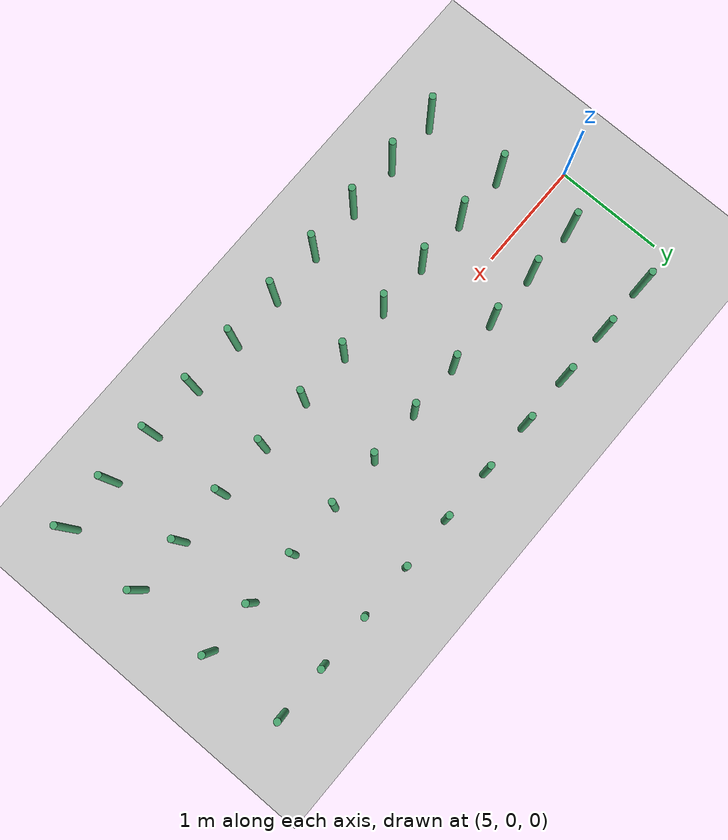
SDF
<sdf version="1.6">
 <world name="default">
  <model name="ground_plane">
   <static>1</static>
   <link name="link">
    <collision name="collision">
     <geometry><plane><normal>0 0 1</normal><size>100 100</size></plane></geometry>
     <surface>
      <contact><collide_bitmask>65535</collide_bitmask></contact>
      <friction><ode><mu>100</mu><mu2>50</mu2></ode></friction>
     </surface>
    </collision>
    <visual name="visual">
     <cast_shadows>0</cast_shadows>
     <geometry><plane><normal>0 0 1</normal><size>100 100</size></plane></geometry>
     <material>
      <script><uri>file://media/materials/scripts/gazebo.material</uri><name>Gazebo/Grey</name></script>
     </material>
    </visual>
   </link>
  </model>
  <model name="cylinder_0040">
   <pose>5.5 0.375 0.5 0 -0 0</pose>
   <link name="cylinder_0040_link">
    <inertial>
     <mass>5.0</mass>
     <inertia>
      <ixx>0.23550000000000001</ixx>
      <ixy>0</ixy>
      <ixz>0</ixz>
      <iyy>0.23550000000000001</iyy>
      <iyz>0</iyz>
      <izz>0.00225</izz>
     </inertia>
    </inertial>
    <collision name="collision">
     <geometry><cylinder><radius>0.03</radius><length>0.75</length></cylinder></geometry>
    </collision>
    <visual name="visual">
     <geometry><cylinder><radius>0.03</radius><length>0.75</length></cylinder></geometry>
     <material>
      <ambient>0.437790 0.985028 0.656685 1.0</ambient>
      <diffuse>0.297093 0.668460 0.445640 1.0</diffuse>
      <specular>0.000000 0.000000 0.000000 1.0</specular>
      <emissive>0.0 0.0 0.0 0.0</emissive>
     </material>
    </visual>
   </link>
  </model>
  <model name="cylinder_0041">
   <pose>5.5 1.125 0.5 0 -0 0</pose>
   <link name="cylinder_0041_link">
    <inertial>
     <mass>5.0</mass>
     <inertia>
      <ixx>0.23550000000000001</ixx>
      <ixy>0</ixy>
      <ixz>0</ixz>
      <iyy>0.23550000000000001</iyy>
      <iyz>0</iyz>
      <izz>0.00225</izz>
     </inertia>
    </inertial>
    <collision name="collision">
     <geometry><cylinder><radius>0.03</radius><length>0.75</length></cylinder></geometry>
    </collision>
    <visual name="visual">
     <geometry><cylinder><radius>0.03</radius><length>0.75</length></cylinder></geometry>
     <material>
      <ambient>0.437790 0.985028 0.656685 1.0</ambient>
      <diffuse>0.297093 0.668460 0.445640 1.0</diffuse>
      <specular>0.000000 0.000000 0.000000 1.0</specular>
      <emissive>0.0 0.0 0.0 0.0</emissive>
     </material>
    </visual>
   </link>
  </model>
  <model name="cylinder_0042">
   <pose>5.5 -0.375 0.5 0 -0 0</pose>
   <link name="cylinder_0042_link">
    <inertial>
     <mass>5.0</mass>
     <inertia>
      <ixx>0.23550000000000001</ixx>
      <ixy>0</ixy>
      <ixz>0</ixz>
      <iyy>0.23550000000000001</iyy>
      <iyz>0</iyz>
      <izz>0.00225</izz>
     </inertia>
    </inertial>
    <collision name="collision">
     <geometry><cylinder><radius>0.03</radius><length>0.75</length></cylinder></geometry>
    </collision>
    <visual name="visual">
     <geometry><cylinder><radius>0.03</radius><length>0.75</length></cylinder></geometry>
     <material>
      <ambient>0.437790 0.985028 0.656685 1.0</ambient>
      <diffuse>0.297093 0.668460 0.445640 1.0</diffuse>
      <specular>0.000000 0.000000 0.000000 1.0</specular>
      <emissive>0.0 0.0 0.0 0.0</emissive>
     </material>
    </visual>
   </link>
  </model>
  <model name="cylinder_0043">
   <pose>5.5 -1.125 0.5 0 -0 0</pose>
   <link name="cylinder_0043_link">
    <inertial>
     <mass>5.0</mass>
     <inertia>
      <ixx>0.23550000000000001</ixx>
      <ixy>0</ixy>
      <ixz>0</ixz>
      <iyy>0.23550000000000001</iyy>
      <iyz>0</iyz>
      <izz>0.00225</izz>
     </inertia>
    </inertial>
    <collision name="collision">
     <geometry><cylinder><radius>0.03</radius><length>0.75</length></cylinder></geometry>
    </collision>
    <visual name="visual">
     <geometry><cylinder><radius>0.03</radius><length>0.75</length></cylinder></geometry>
     <material>
      <ambient>0.437790 0.985028 0.656685 1.0</ambient>
      <diffuse>0.297093 0.668460 0.445640 1.0</diffuse>
      <specular>0.000000 0.000000 0.000000 1.0</specular>
      <emissive>0.0 0.0 0.0 0.0</emissive>
     </material>
    </visual>
   </link>
  </model>
  <model name="cylinder_0044">
   <pose>6.0 0.375 0.5 0 -0 0</pose>
   <link name="cylinder_0044_link">
    <inertial>
     <mass>5.0</mass>
     <inertia>
      <ixx>0.23550000000000001</ixx>
      <ixy>0</ixy>
      <ixz>0</ixz>
      <iyy>0.23550000000000001</iyy>
      <iyz>0</iyz>
      <izz>0.00225</izz>
     </inertia>
    </inertial>
    <collision name="collision">
     <geometry><cylinder><radius>0.03</radius><length>0.75</length></cylinder></geometry>
    </collision>
    <visual name="visual">
     <geometry><cylinder><radius>0.03</radius><length>0.75</length></cylinder></geometry>
     <material>
      <ambient>0.437790 0.985028 0.656685 1.0</ambient>
      <diffuse>0.297093 0.668460 0.445640 1.0</diffuse>
      <specular>0.000000 0.000000 0.000000 1.0</specular>
      <emissive>0.0 0.0 0.0 0.0</emissive>
     </material>
    </visual>
   </link>
  </model>
  <model name="cylinder_0045">
   <pose>6.0 1.125 0.5 0 -0 0</pose>
   <link name="cylinder_0045_link">
    <inertial>
     <mass>5.0</mass>
     <inertia>
      <ixx>0.23550000000000001</ixx>
      <ixy>0</ixy>
      <ixz>0</ixz>
      <iyy>0.23550000000000001</iyy>
      <iyz>0</iyz>
      <izz>0.00225</izz>
     </inertia>
    </inertial>
    <collision name="collision">
     <geometry><cylinder><radius>0.03</radius><length>0.75</length></cylinder></geometry>
    </collision>
    <visual name="visual">
     <geometry><cylinder><radius>0.03</radius><length>0.75</length></cylinder></geometry>
     <material>
      <ambient>0.437790 0.985028 0.656685 1.0</ambient>
      <diffuse>0.297093 0.668460 0.445640 1.0</diffuse>
      <specular>0.000000 0.000000 0.000000 1.0</specular>
      <emissive>0.0 0.0 0.0 0.0</emissive>
     </material>
    </visual>
   </link>
  </model>
  <model name="cylinder_0046">
   <pose>6.0 -0.375 0.5 0 -0 0</pose>
   <link name="cylinder_0046_link">
    <inertial>
     <mass>5.0</mass>
     <inertia>
      <ixx>0.23550000000000001</ixx>
      <ixy>0</ixy>
      <ixz>0</ixz>
      <iyy>0.23550000000000001</iyy>
      <iyz>0</iyz>
      <izz>0.00225</izz>
     </inertia>
    </inertial>
    <collision name="collision">
     <geometry><cylinder><radius>0.03</radius><length>0.75</length></cylinder></geometry>
    </collision>
    <visual name="visual">
     <geometry><cylinder><radius>0.03</radius><length>0.75</length></cylinder></geometry>
     <material>
      <ambient>0.437790 0.985028 0.656685 1.0</ambient>
      <diffuse>0.297093 0.668460 0.445640 1.0</diffuse>
      <specular>0.000000 0.000000 0.000000 1.0</specular>
      <emissive>0.0 0.0 0.0 0.0</emissive>
     </material>
    </visual>
   </link>
  </model>
  <model name="cylinder_0047">
   <pose>6.0 -1.125 0.5 0 -0 0</pose>
   <link name="cylinder_0047_link">
    <inertial>
     <mass>5.0</mass>
     <inertia>
      <ixx>0.23550000000000001</ixx>
      <ixy>0</ixy>
      <ixz>0</ixz>
      <iyy>0.23550000000000001</iyy>
      <iyz>0</iyz>
      <izz>0.00225</izz>
     </inertia>
    </inertial>
    <collision name="collision">
     <geometry><cylinder><radius>0.03</radius><length>0.75</length></cylinder></geometry>
    </collision>
    <visual name="visual">
     <geometry><cylinder><radius>0.03</radius><length>0.75</length></cylinder></geometry>
     <material>
      <ambient>0.437790 0.985028 0.656685 1.0</ambient>
      <diffuse>0.297093 0.668460 0.445640 1.0</diffuse>
      <specular>0.000000 0.000000 0.000000 1.0</specular>
      <emissive>0.0 0.0 0.0 0.0</emissive>
     </material>
    </visual>
   </link>
  </model>
  <model name="cylinder_0048">
   <pose>6.5 0.375 0.5 0 -0 0</pose>
   <link name="cylinder_0048_link">
    <inertial>
     <mass>5.0</mass>
     <inertia>
      <ixx>0.23550000000000001</ixx>
      <ixy>0</ixy>
      <ixz>0</ixz>
      <iyy>0.23550000000000001</iyy>
      <iyz>0</iyz>
      <izz>0.00225</izz>
     </inertia>
    </inertial>
    <collision name="collision">
     <geometry><cylinder><radius>0.03</radius><length>0.75</length></cylinder></geometry>
    </collision>
    <visual name="visual">
     <geometry><cylinder><radius>0.03</radius><length>0.75</length></cylinder></geometry>
     <material>
      <ambient>0.437790 0.985028 0.656685 1.0</ambient>
      <diffuse>0.297093 0.668460 0.445640 1.0</diffuse>
      <specular>0.000000 0.000000 0.000000 1.0</specular>
      <emissive>0.0 0.0 0.0 0.0</emissive>
     </material>
    </visual>
   </link>
  </model>
  <model name="cylinder_0049">
   <pose>6.5 1.125 0.5 0 -0 0</pose>
   <link name="cylinder_0049_link">
    <inertial>
     <mass>5.0</mass>
     <inertia>
      <ixx>0.23550000000000001</ixx>
      <ixy>0</ixy>
      <ixz>0</ixz>
      <iyy>0.23550000000000001</iyy>
      <iyz>0</iyz>
      <izz>0.00225</izz>
     </inertia>
    </inertial>
    <collision name="collision">
     <geometry><cylinder><radius>0.03</radius><length>0.75</length></cylinder></geometry>
    </collision>
    <visual name="visual">
     <geometry><cylinder><radius>0.03</radius><length>0.75</length></cylinder></geometry>
     <material>
      <ambient>0.437790 0.985028 0.656685 1.0</ambient>
      <diffuse>0.297093 0.668460 0.445640 1.0</diffuse>
      <specular>0.000000 0.000000 0.000000 1.0</specular>
      <emissive>0.0 0.0 0.0 0.0</emissive>
     </material>
    </visual>
   </link>
  </model>
  <model name="cylinder_0050">
   <pose>6.5 -0.375 0.5 0 -0 0</pose>
   <link name="cylinder_0050_link">
    <inertial>
     <mass>5.0</mass>
     <inertia>
      <ixx>0.23550000000000001</ixx>
      <ixy>0</ixy>
      <ixz>0</ixz>
      <iyy>0.23550000000000001</iyy>
      <iyz>0</iyz>
      <izz>0.00225</izz>
     </inertia>
    </inertial>
    <collision name="collision">
     <geometry><cylinder><radius>0.03</radius><length>0.75</length></cylinder></geometry>
    </collision>
    <visual name="visual">
     <geometry><cylinder><radius>0.03</radius><length>0.75</length></cylinder></geometry>
     <material>
      <ambient>0.437790 0.985028 0.656685 1.0</ambient>
      <diffuse>0.297093 0.668460 0.445640 1.0</diffuse>
      <specular>0.000000 0.000000 0.000000 1.0</specular>
      <emissive>0.0 0.0 0.0 0.0</emissive>
     </material>
    </visual>
   </link>
  </model>
  <model name="cylinder_0051">
   <pose>6.5 -1.125 0.5 0 -0 0</pose>
   <link name="cylinder_0051_link">
    <inertial>
     <mass>5.0</mass>
     <inertia>
      <ixx>0.23550000000000001</ixx>
      <ixy>0</ixy>
      <ixz>0</ixz>
      <iyy>0.23550000000000001</iyy>
      <iyz>0</iyz>
      <izz>0.00225</izz>
     </inertia>
    </inertial>
    <collision name="collision">
     <geometry><cylinder><radius>0.03</radius><length>0.75</length></cylinder></geometry>
    </collision>
    <visual name="visual">
     <geometry><cylinder><radius>0.03</radius><length>0.75</length></cylinder></geometry>
     <material>
      <ambient>0.437790 0.985028 0.656685 1.0</ambient>
      <diffuse>0.297093 0.668460 0.445640 1.0</diffuse>
      <specular>0.000000 0.000000 0.000000 1.0</specular>
      <emissive>0.0 0.0 0.0 0.0</emissive>
     </material>
    </visual>
   </link>
  </model>
  <model name="cylinder_0052">
   <pose>7.0 0.375 0.5 0 -0 0</pose>
   <link name="cylinder_0052_link">
    <inertial>
     <mass>5.0</mass>
     <inertia>
      <ixx>0.23550000000000001</ixx>
      <ixy>0</ixy>
      <ixz>0</ixz>
      <iyy>0.23550000000000001</iyy>
      <iyz>0</iyz>
      <izz>0.00225</izz>
     </inertia>
    </inertial>
    <collision name="collision">
     <geometry><cylinder><radius>0.03</radius><length>0.75</length></cylinder></geometry>
    </collision>
    <visual name="visual">
     <geometry><cylinder><radius>0.03</radius><length>0.75</length></cylinder></geometry>
     <material>
      <ambient>0.437790 0.985028 0.656685 1.0</ambient>
      <diffuse>0.297093 0.668460 0.445640 1.0</diffuse>
      <specular>0.000000 0.000000 0.000000 1.0</specular>
      <emissive>0.0 0.0 0.0 0.0</emissive>
     </material>
    </visual>
   </link>
  </model>
  <model name="cylinder_0053">
   <pose>7.0 1.125 0.5 0 -0 0</pose>
   <link name="cylinder_0053_link">
    <inertial>
     <mass>5.0</mass>
     <inertia>
      <ixx>0.23550000000000001</ixx>
      <ixy>0</ixy>
      <ixz>0</ixz>
      <iyy>0.23550000000000001</iyy>
      <iyz>0</iyz>
      <izz>0.00225</izz>
     </inertia>
    </inertial>
    <collision name="collision">
     <geometry><cylinder><radius>0.03</radius><length>0.75</length></cylinder></geometry>
    </collision>
    <visual name="visual">
     <geometry><cylinder><radius>0.03</radius><length>0.75</length></cylinder></geometry>
     <material>
      <ambient>0.437790 0.985028 0.656685 1.0</ambient>
      <diffuse>0.297093 0.668460 0.445640 1.0</diffuse>
      <specular>0.000000 0.000000 0.000000 1.0</specular>
      <emissive>0.0 0.0 0.0 0.0</emissive>
     </material>
    </visual>
   </link>
  </model>
  <model name="cylinder_0054">
   <pose>7.0 -0.375 0.5 0 -0 0</pose>
   <link name="cylinder_0054_link">
    <inertial>
     <mass>5.0</mass>
     <inertia>
      <ixx>0.23550000000000001</ixx>
      <ixy>0</ixy>
      <ixz>0</ixz>
      <iyy>0.23550000000000001</iyy>
      <iyz>0</iyz>
      <izz>0.00225</izz>
     </inertia>
    </inertial>
    <collision name="collision">
     <geometry><cylinder><radius>0.03</radius><length>0.75</length></cylinder></geometry>
    </collision>
    <visual name="visual">
     <geometry><cylinder><radius>0.03</radius><length>0.75</length></cylinder></geometry>
     <material>
      <ambient>0.437790 0.985028 0.656685 1.0</ambient>
      <diffuse>0.297093 0.668460 0.445640 1.0</diffuse>
      <specular>0.000000 0.000000 0.000000 1.0</specular>
      <emissive>0.0 0.0 0.0 0.0</emissive>
     </material>
    </visual>
   </link>
  </model>
  <model name="cylinder_0055">
   <pose>7.0 -1.125 0.5 0 -0 0</pose>
   <link name="cylinder_0055_link">
    <inertial>
     <mass>5.0</mass>
     <inertia>
      <ixx>0.23550000000000001</ixx>
      <ixy>0</ixy>
      <ixz>0</ixz>
      <iyy>0.23550000000000001</iyy>
      <iyz>0</iyz>
      <izz>0.00225</izz>
     </inertia>
    </inertial>
    <collision name="collision">
     <geometry><cylinder><radius>0.03</radius><length>0.75</length></cylinder></geometry>
    </collision>
    <visual name="visual">
     <geometry><cylinder><radius>0.03</radius><length>0.75</length></cylinder></geometry>
     <material>
      <ambient>0.437790 0.985028 0.656685 1.0</ambient>
      <diffuse>0.297093 0.668460 0.445640 1.0</diffuse>
      <specular>0.000000 0.000000 0.000000 1.0</specular>
      <emissive>0.0 0.0 0.0 0.0</emissive>
     </material>
    </visual>
   </link>
  </model>
  <model name="cylinder_0056">
   <pose>7.5 0.375 0.5 0 -0 0</pose>
   <link name="cylinder_0056_link">
    <inertial>
     <mass>5.0</mass>
     <inertia>
      <ixx>0.23550000000000001</ixx>
      <ixy>0</ixy>
      <ixz>0</ixz>
      <iyy>0.23550000000000001</iyy>
      <iyz>0</iyz>
      <izz>0.00225</izz>
     </inertia>
    </inertial>
    <collision name="collision">
     <geometry><cylinder><radius>0.03</radius><length>0.75</length></cylinder></geometry>
    </collision>
    <visual name="visual">
     <geometry><cylinder><radius>0.03</radius><length>0.75</length></cylinder></geometry>
     <material>
      <ambient>0.437790 0.985028 0.656685 1.0</ambient>
      <diffuse>0.297093 0.668460 0.445640 1.0</diffuse>
      <specular>0.000000 0.000000 0.000000 1.0</specular>
      <emissive>0.0 0.0 0.0 0.0</emissive>
     </material>
    </visual>
   </link>
  </model>
  <model name="cylinder_0057">
   <pose>7.5 1.125 0.5 0 -0 0</pose>
   <link name="cylinder_0057_link">
    <inertial>
     <mass>5.0</mass>
     <inertia>
      <ixx>0.23550000000000001</ixx>
      <ixy>0</ixy>
      <ixz>0</ixz>
      <iyy>0.23550000000000001</iyy>
      <iyz>0</iyz>
      <izz>0.00225</izz>
     </inertia>
    </inertial>
    <collision name="collision">
     <geometry><cylinder><radius>0.03</radius><length>0.75</length></cylinder></geometry>
    </collision>
    <visual name="visual">
     <geometry><cylinder><radius>0.03</radius><length>0.75</length></cylinder></geometry>
     <material>
      <ambient>0.437790 0.985028 0.656685 1.0</ambient>
      <diffuse>0.297093 0.668460 0.445640 1.0</diffuse>
      <specular>0.000000 0.000000 0.000000 1.0</specular>
      <emissive>0.0 0.0 0.0 0.0</emissive>
     </material>
    </visual>
   </link>
  </model>
  <model name="cylinder_0058">
   <pose>7.5 -0.375 0.5 0 -0 0</pose>
   <link name="cylinder_0058_link">
    <inertial>
     <mass>5.0</mass>
     <inertia>
      <ixx>0.23550000000000001</ixx>
      <ixy>0</ixy>
      <ixz>0</ixz>
      <iyy>0.23550000000000001</iyy>
      <iyz>0</iyz>
      <izz>0.00225</izz>
     </inertia>
    </inertial>
    <collision name="collision">
     <geometry><cylinder><radius>0.03</radius><length>0.75</length></cylinder></geometry>
    </collision>
    <visual name="visual">
     <geometry><cylinder><radius>0.03</radius><length>0.75</length></cylinder></geometry>
     <material>
      <ambient>0.437790 0.985028 0.656685 1.0</ambient>
      <diffuse>0.297093 0.668460 0.445640 1.0</diffuse>
      <specular>0.000000 0.000000 0.000000 1.0</specular>
      <emissive>0.0 0.0 0.0 0.0</emissive>
     </material>
    </visual>
   </link>
  </model>
  <model name="cylinder_0059">
   <pose>7.5 -1.125 0.5 0 -0 0</pose>
   <link name="cylinder_0059_link">
    <inertial>
     <mass>5.0</mass>
     <inertia>
      <ixx>0.23550000000000001</ixx>
      <ixy>0</ixy>
      <ixz>0</ixz>
      <iyy>0.23550000000000001</iyy>
      <iyz>0</iyz>
      <izz>0.00225</izz>
     </inertia>
    </inertial>
    <collision name="collision">
     <geometry><cylinder><radius>0.03</radius><length>0.75</length></cylinder></geometry>
    </collision>
    <visual name="visual">
     <geometry><cylinder><radius>0.03</radius><length>0.75</length></cylinder></geometry>
     <material>
      <ambient>0.437790 0.985028 0.656685 1.0</ambient>
      <diffuse>0.297093 0.668460 0.445640 1.0</diffuse>
      <specular>0.000000 0.000000 0.000000 1.0</specular>
      <emissive>0.0 0.0 0.0 0.0</emissive>
     </material>
    </visual>
   </link>
  </model>
  <model name="cylinder_0060">
   <pose>8.0 0.375 0.5 0 -0 0</pose>
   <link name="cylinder_0060_link">
    <inertial>
     <mass>5.0</mass>
     <inertia>
      <ixx>0.23550000000000001</ixx>
      <ixy>0</ixy>
      <ixz>0</ixz>
      <iyy>0.23550000000000001</iyy>
      <iyz>0</iyz>
      <izz>0.00225</izz>
     </inertia>
    </inertial>
    <collision name="collision">
     <geometry><cylinder><radius>0.03</radius><length>0.75</length></cylinder></geometry>
    </collision>
    <visual name="visual">
     <geometry><cylinder><radius>0.03</radius><length>0.75</length></cylinder></geometry>
     <material>
      <ambient>0.437790 0.985028 0.656685 1.0</ambient>
      <diffuse>0.297093 0.668460 0.445640 1.0</diffuse>
      <specular>0.000000 0.000000 0.000000 1.0</specular>
      <emissive>0.0 0.0 0.0 0.0</emissive>
     </material>
    </visual>
   </link>
  </model>
  <model name="cylinder_0061">
   <pose>8.0 1.125 0.5 0 -0 0</pose>
   <link name="cylinder_0061_link">
    <inertial>
     <mass>5.0</mass>
     <inertia>
      <ixx>0.23550000000000001</ixx>
      <ixy>0</ixy>
      <ixz>0</ixz>
      <iyy>0.23550000000000001</iyy>
      <iyz>0</iyz>
      <izz>0.00225</izz>
     </inertia>
    </inertial>
    <collision name="collision">
     <geometry><cylinder><radius>0.03</radius><length>0.75</length></cylinder></geometry>
    </collision>
    <visual name="visual">
     <geometry><cylinder><radius>0.03</radius><length>0.75</length></cylinder></geometry>
     <material>
      <ambient>0.437790 0.985028 0.656685 1.0</ambient>
      <diffuse>0.297093 0.668460 0.445640 1.0</diffuse>
      <specular>0.000000 0.000000 0.000000 1.0</specular>
      <emissive>0.0 0.0 0.0 0.0</emissive>
     </material>
    </visual>
   </link>
  </model>
  <model name="cylinder_0062">
   <pose>8.0 -0.375 0.5 0 -0 0</pose>
   <link name="cylinder_0062_link">
    <inertial>
     <mass>5.0</mass>
     <inertia>
      <ixx>0.23550000000000001</ixx>
      <ixy>0</ixy>
      <ixz>0</ixz>
      <iyy>0.23550000000000001</iyy>
      <iyz>0</iyz>
      <izz>0.00225</izz>
     </inertia>
    </inertial>
    <collision name="collision">
     <geometry><cylinder><radius>0.03</radius><length>0.75</length></cylinder></geometry>
    </collision>
    <visual name="visual">
     <geometry><cylinder><radius>0.03</radius><length>0.75</length></cylinder></geometry>
     <material>
      <ambient>0.437790 0.985028 0.656685 1.0</ambient>
      <diffuse>0.297093 0.668460 0.445640 1.0</diffuse>
      <specular>0.000000 0.000000 0.000000 1.0</specular>
      <emissive>0.0 0.0 0.0 0.0</emissive>
     </material>
    </visual>
   </link>
  </model>
  <model name="cylinder_0063">
   <pose>8.0 -1.125 0.5 0 -0 0</pose>
   <link name="cylinder_0063_link">
    <inertial>
     <mass>5.0</mass>
     <inertia>
      <ixx>0.23550000000000001</ixx>
      <ixy>0</ixy>
      <ixz>0</ixz>
      <iyy>0.23550000000000001</iyy>
      <iyz>0</iyz>
      <izz>0.00225</izz>
     </inertia>
    </inertial>
    <collision name="collision">
     <geometry><cylinder><radius>0.03</radius><length>0.75</length></cylinder></geometry>
    </collision>
    <visual name="visual">
     <geometry><cylinder><radius>0.03</radius><length>0.75</length></cylinder></geometry>
     <material>
      <ambient>0.437790 0.985028 0.656685 1.0</ambient>
      <diffuse>0.297093 0.668460 0.445640 1.0</diffuse>
      <specular>0.000000 0.000000 0.000000 1.0</specular>
      <emissive>0.0 0.0 0.0 0.0</emissive>
     </material>
    </visual>
   </link>
  </model>
  <model name="cylinder_0064">
   <pose>8.5 0.375 0.5 0 -0 0</pose>
   <link name="cylinder_0064_link">
    <inertial>
     <mass>5.0</mass>
     <inertia>
      <ixx>0.23550000000000001</ixx>
      <ixy>0</ixy>
      <ixz>0</ixz>
      <iyy>0.23550000000000001</iyy>
      <iyz>0</iyz>
      <izz>0.00225</izz>
     </inertia>
    </inertial>
    <collision name="collision">
     <geometry><cylinder><radius>0.03</radius><length>0.75</length></cylinder></geometry>
    </collision>
    <visual name="visual">
     <geometry><cylinder><radius>0.03</radius><length>0.75</length></cylinder></geometry>
     <material>
      <ambient>0.437790 0.985028 0.656685 1.0</ambient>
      <diffuse>0.297093 0.668460 0.445640 1.0</diffuse>
      <specular>0.000000 0.000000 0.000000 1.0</specular>
      <emissive>0.0 0.0 0.0 0.0</emissive>
     </material>
    </visual>
   </link>
  </model>
  <model name="cylinder_0065">
   <pose>8.5 1.125 0.5 0 -0 0</pose>
   <link name="cylinder_0065_link">
    <inertial>
     <mass>5.0</mass>
     <inertia>
      <ixx>0.23550000000000001</ixx>
      <ixy>0</ixy>
      <ixz>0</ixz>
      <iyy>0.23550000000000001</iyy>
      <iyz>0</iyz>
      <izz>0.00225</izz>
     </inertia>
    </inertial>
    <collision name="collision">
     <geometry><cylinder><radius>0.03</radius><length>0.75</length></cylinder></geometry>
    </collision>
    <visual name="visual">
     <geometry><cylinder><radius>0.03</radius><length>0.75</length></cylinder></geometry>
     <material>
      <ambient>0.437790 0.985028 0.656685 1.0</ambient>
      <diffuse>0.297093 0.668460 0.445640 1.0</diffuse>
      <specular>0.000000 0.000000 0.000000 1.0</specular>
      <emissive>0.0 0.0 0.0 0.0</emissive>
     </material>
    </visual>
   </link>
  </model>
  <model name="cylinder_0066">
   <pose>8.5 -0.375 0.5 0 -0 0</pose>
   <link name="cylinder_0066_link">
    <inertial>
     <mass>5.0</mass>
     <inertia>
      <ixx>0.23550000000000001</ixx>
      <ixy>0</ixy>
      <ixz>0</ixz>
      <iyy>0.23550000000000001</iyy>
      <iyz>0</iyz>
      <izz>0.00225</izz>
     </inertia>
    </inertial>
    <collision name="collision">
     <geometry><cylinder><radius>0.03</radius><length>0.75</length></cylinder></geometry>
    </collision>
    <visual name="visual">
     <geometry><cylinder><radius>0.03</radius><length>0.75</length></cylinder></geometry>
     <material>
      <ambient>0.437790 0.985028 0.656685 1.0</ambient>
      <diffuse>0.297093 0.668460 0.445640 1.0</diffuse>
      <specular>0.000000 0.000000 0.000000 1.0</specular>
      <emissive>0.0 0.0 0.0 0.0</emissive>
     </material>
    </visual>
   </link>
  </model>
  <model name="cylinder_0067">
   <pose>8.5 -1.125 0.5 0 -0 0</pose>
   <link name="cylinder_0067_link">
    <inertial>
     <mass>5.0</mass>
     <inertia>
      <ixx>0.23550000000000001</ixx>
      <ixy>0</ixy>
      <ixz>0</ixz>
      <iyy>0.23550000000000001</iyy>
      <iyz>0</iyz>
      <izz>0.00225</izz>
     </inertia>
    </inertial>
    <collision name="collision">
     <geometry><cylinder><radius>0.03</radius><length>0.75</length></cylinder></geometry>
    </collision>
    <visual name="visual">
     <geometry><cylinder><radius>0.03</radius><length>0.75</length></cylinder></geometry>
     <material>
      <ambient>0.437790 0.985028 0.656685 1.0</ambient>
      <diffuse>0.297093 0.668460 0.445640 1.0</diffuse>
      <specular>0.000000 0.000000 0.000000 1.0</specular>
      <emissive>0.0 0.0 0.0 0.0</emissive>
     </material>
    </visual>
   </link>
  </model>
  <model name="cylinder_0068">
   <pose>9.0 0.375 0.5 0 -0 0</pose>
   <link name="cylinder_0068_link">
    <inertial>
     <mass>5.0</mass>
     <inertia>
      <ixx>0.23550000000000001</ixx>
      <ixy>0</ixy>
      <ixz>0</ixz>
      <iyy>0.23550000000000001</iyy>
      <iyz>0</iyz>
      <izz>0.00225</izz>
     </inertia>
    </inertial>
    <collision name="collision">
     <geometry><cylinder><radius>0.03</radius><length>0.75</length></cylinder></geometry>
    </collision>
    <visual name="visual">
     <geometry><cylinder><radius>0.03</radius><length>0.75</length></cylinder></geometry>
     <material>
      <ambient>0.437790 0.985028 0.656685 1.0</ambient>
      <diffuse>0.297093 0.668460 0.445640 1.0</diffuse>
      <specular>0.000000 0.000000 0.000000 1.0</specular>
      <emissive>0.0 0.0 0.0 0.0</emissive>
     </material>
    </visual>
   </link>
  </model>
  <model name="cylinder_0069">
   <pose>9.0 1.125 0.5 0 -0 0</pose>
   <link name="cylinder_0069_link">
    <inertial>
     <mass>5.0</mass>
     <inertia>
      <ixx>0.23550000000000001</ixx>
      <ixy>0</ixy>
      <ixz>0</ixz>
      <iyy>0.23550000000000001</iyy>
      <iyz>0</iyz>
      <izz>0.00225</izz>
     </inertia>
    </inertial>
    <collision name="collision">
     <geometry><cylinder><radius>0.03</radius><length>0.75</length></cylinder></geometry>
    </collision>
    <visual name="visual">
     <geometry><cylinder><radius>0.03</radius><length>0.75</length></cylinder></geometry>
     <material>
      <ambient>0.437790 0.985028 0.656685 1.0</ambient>
      <diffuse>0.297093 0.668460 0.445640 1.0</diffuse>
      <specular>0.000000 0.000000 0.000000 1.0</specular>
      <emissive>0.0 0.0 0.0 0.0</emissive>
     </material>
    </visual>
   </link>
  </model>
  <model name="cylinder_0070">
   <pose>9.0 -0.375 0.5 0 -0 0</pose>
   <link name="cylinder_0070_link">
    <inertial>
     <mass>5.0</mass>
     <inertia>
      <ixx>0.23550000000000001</ixx>
      <ixy>0</ixy>
      <ixz>0</ixz>
      <iyy>0.23550000000000001</iyy>
      <iyz>0</iyz>
      <izz>0.00225</izz>
     </inertia>
    </inertial>
    <collision name="collision">
     <geometry><cylinder><radius>0.03</radius><length>0.75</length></cylinder></geometry>
    </collision>
    <visual name="visual">
     <geometry><cylinder><radius>0.03</radius><length>0.75</length></cylinder></geometry>
     <material>
      <ambient>0.437790 0.985028 0.656685 1.0</ambient>
      <diffuse>0.297093 0.668460 0.445640 1.0</diffuse>
      <specular>0.000000 0.000000 0.000000 1.0</specular>
      <emissive>0.0 0.0 0.0 0.0</emissive>
     </material>
    </visual>
   </link>
  </model>
  <model name="cylinder_0071">
   <pose>9.0 -1.125 0.5 0 -0 0</pose>
   <link name="cylinder_0071_link">
    <inertial>
     <mass>5.0</mass>
     <inertia>
      <ixx>0.23550000000000001</ixx>
      <ixy>0</ixy>
      <ixz>0</ixz>
      <iyy>0.23550000000000001</iyy>
      <iyz>0</iyz>
      <izz>0.00225</izz>
     </inertia>
    </inertial>
    <collision name="collision">
     <geometry><cylinder><radius>0.03</radius><length>0.75</length></cylinder></geometry>
    </collision>
    <visual name="visual">
     <geometry><cylinder><radius>0.03</radius><length>0.75</length></cylinder></geometry>
     <material>
      <ambient>0.437790 0.985028 0.656685 1.0</ambient>
      <diffuse>0.297093 0.668460 0.445640 1.0</diffuse>
      <specular>0.000000 0.000000 0.000000 1.0</specular>
      <emissive>0.0 0.0 0.0 0.0</emissive>
     </material>
    </visual>
   </link>
  </model>
  <model name="cylinder_0072">
   <pose>9.5 0.375 0.5 0 -0 0</pose>
   <link name="cylinder_0072_link">
    <inertial>
     <mass>5.0</mass>
     <inertia>
      <ixx>0.23550000000000001</ixx>
      <ixy>0</ixy>
      <ixz>0</ixz>
      <iyy>0.23550000000000001</iyy>
      <iyz>0</iyz>
      <izz>0.00225</izz>
     </inertia>
    </inertial>
    <collision name="collision">
     <geometry><cylinder><radius>0.03</radius><length>0.75</length></cylinder></geometry>
    </collision>
    <visual name="visual">
     <geometry><cylinder><radius>0.03</radius><length>0.75</length></cylinder></geometry>
     <material>
      <ambient>0.437790 0.985028 0.656685 1.0</ambient>
      <diffuse>0.297093 0.668460 0.445640 1.0</diffuse>
      <specular>0.000000 0.000000 0.000000 1.0</specular>
      <emissive>0.0 0.0 0.0 0.0</emissive>
     </material>
    </visual>
   </link>
  </model>
  <model name="cylinder_0073">
   <pose>9.5 1.125 0.5 0 -0 0</pose>
   <link name="cylinder_0073_link">
    <inertial>
     <mass>5.0</mass>
     <inertia>
      <ixx>0.23550000000000001</ixx>
      <ixy>0</ixy>
      <ixz>0</ixz>
      <iyy>0.23550000000000001</iyy>
      <iyz>0</iyz>
      <izz>0.00225</izz>
     </inertia>
    </inertial>
    <collision name="collision">
     <geometry><cylinder><radius>0.03</radius><length>0.75</length></cylinder></geometry>
    </collision>
    <visual name="visual">
     <geometry><cylinder><radius>0.03</radius><length>0.75</length></cylinder></geometry>
     <material>
      <ambient>0.437790 0.985028 0.656685 1.0</ambient>
      <diffuse>0.297093 0.668460 0.445640 1.0</diffuse>
      <specular>0.000000 0.000000 0.000000 1.0</specular>
      <emissive>0.0 0.0 0.0 0.0</emissive>
     </material>
    </visual>
   </link>
  </model>
  <model name="cylinder_0074">
   <pose>9.5 -0.375 0.5 0 -0 0</pose>
   <link name="cylinder_0074_link">
    <inertial>
     <mass>5.0</mass>
     <inertia>
      <ixx>0.23550000000000001</ixx>
      <ixy>0</ixy>
      <ixz>0</ixz>
      <iyy>0.23550000000000001</iyy>
      <iyz>0</iyz>
      <izz>0.00225</izz>
     </inertia>
    </inertial>
    <collision name="collision">
     <geometry><cylinder><radius>0.03</radius><length>0.75</length></cylinder></geometry>
    </collision>
    <visual name="visual">
     <geometry><cylinder><radius>0.03</radius><length>0.75</length></cylinder></geometry>
     <material>
      <ambient>0.437790 0.985028 0.656685 1.0</ambient>
      <diffuse>0.297093 0.668460 0.445640 1.0</diffuse>
      <specular>0.000000 0.000000 0.000000 1.0</specular>
      <emissive>0.0 0.0 0.0 0.0</emissive>
     </material>
    </visual>
   </link>
  </model>
  <model name="cylinder_0075">
   <pose>9.5 -1.125 0.5 0 -0 0</pose>
   <link name="cylinder_0075_link">
    <inertial>
     <mass>5.0</mass>
     <inertia>
      <ixx>0.23550000000000001</ixx>
      <ixy>0</ixy>
      <ixz>0</ixz>
      <iyy>0.23550000000000001</iyy>
      <iyz>0</iyz>
      <izz>0.00225</izz>
     </inertia>
    </inertial>
    <collision name="collision">
     <geometry><cylinder><radius>0.03</radius><length>0.75</length></cylinder></geometry>
    </collision>
    <visual name="visual">
     <geometry><cylinder><radius>0.03</radius><length>0.75</length></cylinder></geometry>
     <material>
      <ambient>0.437790 0.985028 0.656685 1.0</ambient>
      <diffuse>0.297093 0.668460 0.445640 1.0</diffuse>
      <specular>0.000000 0.000000 0.000000 1.0</specular>
      <emissive>0.0 0.0 0.0 0.0</emissive>
     </material>
    </visual>
   </link>
  </model>
  <model name="cylinder_0076">
   <pose>10.0 0.375 0.5 0 -0 0</pose>
   <link name="cylinder_0076_link">
    <inertial>
     <mass>5.0</mass>
     <inertia>
      <ixx>0.23550000000000001</ixx>
      <ixy>0</ixy>
      <ixz>0</ixz>
      <iyy>0.23550000000000001</iyy>
      <iyz>0</iyz>
      <izz>0.00225</izz>
     </inertia>
    </inertial>
    <collision name="collision">
     <geometry><cylinder><radius>0.03</radius><length>0.75</length></cylinder></geometry>
    </collision>
    <visual name="visual">
     <geometry><cylinder><radius>0.03</radius><length>0.75</length></cylinder></geometry>
     <material>
      <ambient>0.437790 0.985028 0.656685 1.0</ambient>
      <diffuse>0.297093 0.668460 0.445640 1.0</diffuse>
      <specular>0.000000 0.000000 0.000000 1.0</specular>
      <emissive>0.0 0.0 0.0 0.0</emissive>
     </material>
    </visual>
   </link>
  </model>
  <model name="cylinder_0077">
   <pose>10.0 1.125 0.5 0 -0 0</pose>
   <link name="cylinder_0077_link">
    <inertial>
     <mass>5.0</mass>
     <inertia>
      <ixx>0.23550000000000001</ixx>
      <ixy>0</ixy>
      <ixz>0</ixz>
      <iyy>0.23550000000000001</iyy>
      <iyz>0</iyz>
      <izz>0.00225</izz>
     </inertia>
    </inertial>
    <collision name="collision">
     <geometry><cylinder><radius>0.03</radius><length>0.75</length></cylinder></geometry>
    </collision>
    <visual name="visual">
     <geometry><cylinder><radius>0.03</radius><length>0.75</length></cylinder></geometry>
     <material>
      <ambient>0.437790 0.985028 0.656685 1.0</ambient>
      <diffuse>0.297093 0.668460 0.445640 1.0</diffuse>
      <specular>0.000000 0.000000 0.000000 1.0</specular>
      <emissive>0.0 0.0 0.0 0.0</emissive>
     </material>
    </visual>
   </link>
  </model>
  <model name="cylinder_0078">
   <pose>10.0 -0.375 0.5 0 -0 0</pose>
   <link name="cylinder_0078_link">
    <inertial>
     <mass>5.0</mass>
     <inertia>
      <ixx>0.23550000000000001</ixx>
      <ixy>0</ixy>
      <ixz>0</ixz>
      <iyy>0.23550000000000001</iyy>
      <iyz>0</iyz>
      <izz>0.00225</izz>
     </inertia>
    </inertial>
    <collision name="collision">
     <geometry><cylinder><radius>0.03</radius><length>0.75</length></cylinder></geometry>
    </collision>
    <visual name="visual">
     <geometry><cylinder><radius>0.03</radius><length>0.75</length></cylinder></geometry>
     <material>
      <ambient>0.437790 0.985028 0.656685 1.0</ambient>
      <diffuse>0.297093 0.668460 0.445640 1.0</diffuse>
      <specular>0.000000 0.000000 0.000000 1.0</specular>
      <emissive>0.0 0.0 0.0 0.0</emissive>
     </material>
    </visual>
   </link>
  </model>
  <model name="cylinder_0079">
   <pose>10.0 -1.125 0.5 0 -0 0</pose>
   <link name="cylinder_0079_link">
    <inertial>
     <mass>5.0</mass>
     <inertia>
      <ixx>0.23550000000000001</ixx>
      <ixy>0</ixy>
      <ixz>0</ixz>
      <iyy>0.23550000000000001</iyy>
      <iyz>0</iyz>
      <izz>0.00225</izz>
     </inertia>
    </inertial>
    <collision name="collision">
     <geometry><cylinder><radius>0.03</radius><length>0.75</length></cylinder></geometry>
    </collision>
    <visual name="visual">
     <geometry><cylinder><radius>0.03</radius><length>0.75</length></cylinder></geometry>
     <material>
      <ambient>0.437790 0.985028 0.656685 1.0</ambient>
      <diffuse>0.297093 0.668460 0.445640 1.0</diffuse>
      <specular>0.000000 0.000000 0.000000 1.0</specular>
      <emissive>0.0 0.0 0.0 0.0</emissive>
     </material>
    </visual>
   </link>
  </model>
 </world>
</sdf>
